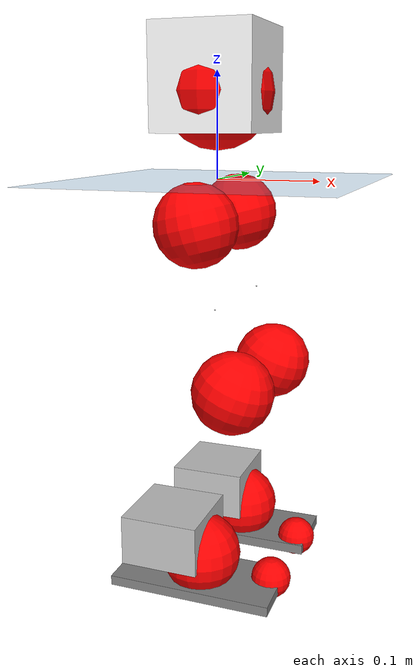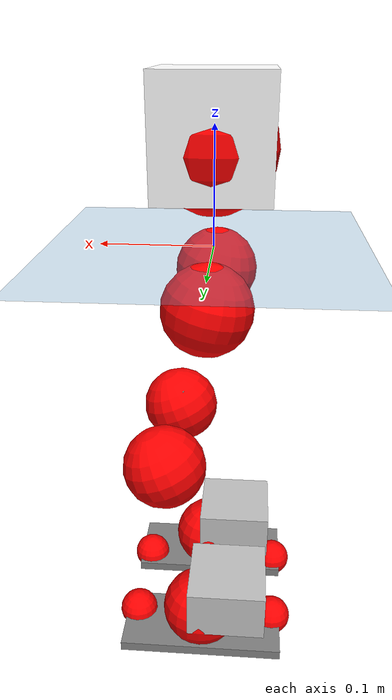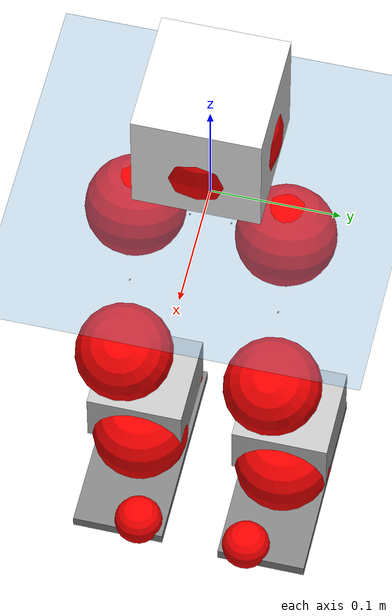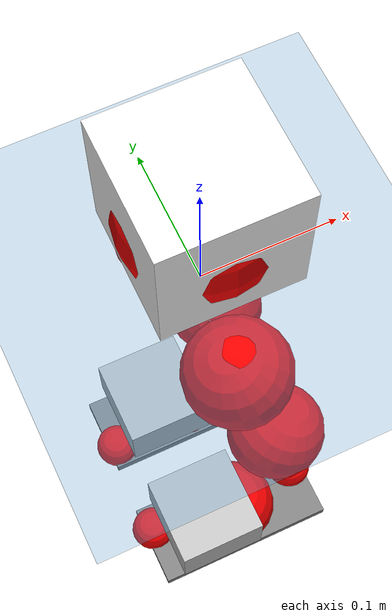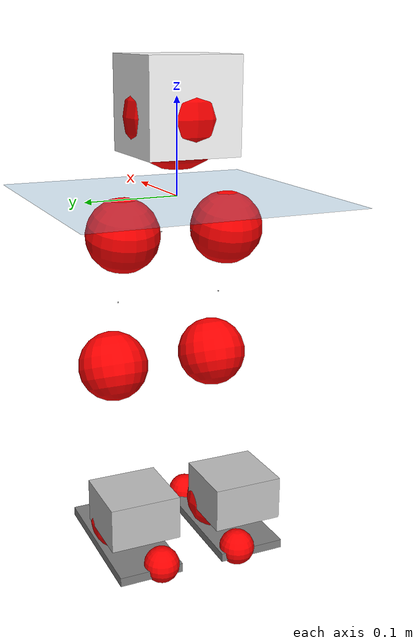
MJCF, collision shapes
<mujoco model="pi_12dof_release_v1">
  <compiler angle="radian" assetdir="assets" balanceinertia="true" inertiafromgeom="false"/>

  <option timestep="0.005" density="1.2" viscosity="2e-05"/>

  <size nkey="1"/>

  <visual>
    <quality shadowsize="8192"/>
    <map shadowclip="0.5"/>
  </visual>

  <default>
    <default class="/">
      <joint armature="0.01" damping="0.01" frictionloss="0.01"/>
      <geom contype="0" conaffinity="0" group="1" solref="-1000 -80"/>
      <site size="0.01 0.005 0.005" group="5"/>
      <general forcelimited="true" biastype="affine" gainprm="20" biasprm="0 -20 -0.5"/>
      <default class="foot">
        <geom size="0.0845 0.036 0.005" type="box" condim="6" group="4" priority="1" friction="0.9 0.2 0.2" solimp="0.015 1 0.005"/>
      </default>
      <default class="reward_collision_sphere">
        <geom group="5" rgba="1 0 0 1"/>
      </default>
    </default>
  </default>

  <asset>
    <texture type="skybox" colorspace="auto" name="//unnamed_texture_0" builtin="gradient" rgb1="0.95 0.95 0.95" rgb2="0.95 0.95 0.95" width="100" height="600"/>
    <texture type="2d" colorspace="auto" name="texplane" builtin="checker" rgb1="0.345 0.575 0.748" rgb2="0.345 0.575 0.748" markrgb="1 1 1" width="512" height="512"/>
    <material name="MatPlane" class="/" texture="texplane" texuniform="true" texrepeat="2 2" specular="0.9"/>
    <mesh name="baselink_1" class="/" file="baselink_1.STL"/>
    <mesh name="r_hip_pitch_link" class="/" file="r_hip_pitch_link.STL"/>
    <mesh name="r_hip_roll_link" class="/" file="r_hip_roll_link.STL"/>
    <mesh name="r_thigh_link" class="/" file="r_thigh_link.STL"/>
    <mesh name="r_calf_link" class="/" file="r_calf_link.STL"/>
    <mesh name="r_ankle_pitch_link" class="/" file="r_ankle_pitch_link.STL"/>
    <mesh name="r_ankle_roll_link" class="/" file="r_ankle_roll_link.STL"/>
    <mesh name="l_hip_pitch_link" class="/" file="l_hip_pitch_link.STL"/>
    <mesh name="l_hip_roll_link" class="/" file="l_hip_roll_link.STL"/>
    <mesh name="l_thigh_link" class="/" file="l_thigh_link.STL"/>
    <mesh name="l_calf_link" class="/" file="l_calf_link.STL"/>
    <mesh name="l_ankle_pitch_link" class="/" file="l_ankle_pitch_link.STL"/>
    <mesh name="l_ankle_roll_link" class="/" file="l_ankle_roll_link.STL"/>
  </asset>

  <worldbody>
    <geom name="floor" class="/" size="100 100 0.125" type="plane" group="0" material="MatPlane"/>
    <light name="toplight_shadow" class="/" pos="0 0 5" dir="0.0990148 0.0990148 -0.990148" type="directional" ambient="0.04 0.04 0.04" diffuse="0.55 0.55 0.55" specular="0.12 0.12 0.12"/>
    <light name="toplight_fill" class="/" pos="0 0 5" dir="0.0990148 0.0990148 -0.990148" type="directional" castshadow="false" ambient="0.04 0.04 0.04" diffuse="0.3 0.3 0.3" specular="0.08 0.08 0.08"/>
    <body name="trunk" pos="0.000111055 0.000513794 0.000454668" quat="1 -0.000106262 -3.03796e-05 -0.000219652">
      <inertial pos="0.00331662 -0.00215345 0.0459885" quat="0.696306 0.0118578 0.0057365 0.717624" mass="1.98061" diaginertia="0.012032 0.00195106 0.00802012"/>
      <joint name="//unnamed_joint_0" type="free"/>
      <geom name="//unnamed_geom_1" class="/" type="mesh" density="0" rgba="1 1 1 1" mesh="baselink_1"/>
      <geom name="//unnamed_geom_2" class="/" size="0.0488685 0.0488685 0.0488685" pos="0 0 0.0914724" type="box" rgba="1 1 1 1"/>
      <geom name="//unnamed_geom_3" class="reward_collision_sphere" size="0.0537553" pos="0 0 0.0800383"/>
      <site name="imu" class="/" pos="-0.00177809 -0.000594258 -0.000628314" size="0.00977369"/>
      <camera name="track" class="/" pos="0 -1.47743 0" quat="0.707107 0.707107 0 0" mode="trackcom"/>
      <camera name="ego_camera" class="/" pos="0.078749 0 0.205813" quat="-0.5 -0.5 0.5 0.5"/>
      <body name="r_hip_pitch_link" pos="-0.000452742 -0.0166463 -0.0376345" quat="0.992209 5.75005e-05 -0.124584 0.000169071">
        <inertial pos="0.000987493 -0.0422364 0.000300863" quat="-0.0175337 0.700635 -0.034139 0.712487" mass="0.345315" diaginertia="0.000139035 2.19073e-05 0.000163368"/>
        <joint name="r_hip_pitch_joint" class="/" pos="0 0 0" axis="0.00829028 -0.999965 -0.00112642" range="-1.76103 1.23223" armature="0.00976346" damping="0.0190115" frictionloss="0.0103565"/>
        <geom name="//unnamed_geom_4" class="/" type="mesh" density="0" rgba="0.75294 0.75294 0.75294 1" mesh="r_hip_pitch_link"/>
        <geom name="//unnamed_geom_5" class="/" size="0.000488685 0.000488685 0.000488685" type="box" rgba="0.75294 0.75294 0.75294 1"/>
        <body name="r_hip_roll_link" pos="0.000426497 -0.04184 -0.00066356" quat="1 -0.000667546 0.000290201 -0.000162523">
          <inertial pos="-0.000668548 0.00132254 -0.0695014" quat="0.706997 -0.0753705 -0.080711 0.698541" mass="0.359067" diaginertia="0.000422993 6.24149e-05 0.000251667"/>
          <joint name="r_hip_roll_joint" class="/" pos="0 0 0" axis="-0.999991 0.00330389 -0.0026915" range="-0.123574 0.500819" armature="0.00981849" damping="0.00984349" frictionloss="0.0096098"/>
          <geom name="//unnamed_geom_6" class="/" type="mesh" density="0" rgba="0.75294 0.75294 0.75294 1" mesh="r_hip_roll_link"/>
          <geom name="//unnamed_geom_7" class="/" size="0.000488685 0.000488685 0.000488685" type="box" rgba="0.75294 0.75294 0.75294 1"/>
          <geom name="//unnamed_geom_8" class="reward_collision_sphere" size="0.0390948"/>
          <body name="r_thigh_link" pos="-0.000349126 -0.00120678 -0.0785018" quat="1 -0.00025089 -0.000204262 -3.07231e-05">
            <inertial pos="-0.000317563 0.00103296 -0.0546533" quat="0.735644 0.677363 -0.00253609 -0.000763605" mass="0.105264" diaginertia="0.00016087 2.12948e-05 0.000113636"/>
            <joint name="r_thigh_joint" class="/" pos="0 0 0" axis="-0.000573782 0.000246488 -1" range="-0.330553 0.563636" armature="0.0099782" damping="0" frictionloss="0.0104438"/>
            <geom name="//unnamed_geom_9" class="/" type="mesh" density="0" rgba="0.75294 0.75294 0.75294 1" mesh="r_thigh_link"/>
            <geom name="//unnamed_geom_10" class="/" size="0.000488685 0.000488685 0.000488685" type="box" rgba="0.75294 0.75294 0.75294 1"/>
            <body name="r_calf_link" pos="-0.00201803 -0.00106446 -0.0793819" quat="0.947652 4.52033e-05 0.319305 -8.74219e-05">
              <inertial pos="-0.000730834 -0.0017483 -0.0790494" quat="0.99995 -0.00736678 -0.000518258 0.00680058" mass="0.765308" diaginertia="0.00449971 0.000770161 0.000337364"/>
              <joint name="r_calf_joint" class="/" pos="0 0 0" axis="-0.00964631 -0.999942 0.00481371" stiffness="0.000902112" range="-1.63124 0.638103" armature="0.00988593" damping="0.0140182" frictionloss="0.0102784"/>
              <geom name="//unnamed_geom_11" class="/" type="mesh" density="0" rgba="0.75294 0.75294 0.75294 1" mesh="r_calf_link"/>
              <geom name="//unnamed_geom_12" class="/" size="0.000488685 0.000488685 0.000488685" type="box" rgba="0.75294 0.75294 0.75294 1"/>
              <geom name="//unnamed_geom_13" class="reward_collision_sphere" size="0.0390948"/>
              <body name="r_ankle_pitch_link" pos="0.00135791 0.000388484 -0.161409" quat="0.980068 6.15323e-06 -0.198663 -4.71187e-05">
                <inertial pos="0.00414141 0.00338063 0.000962078" quat="0.004449 0.708425 -0.000243979 0.705772" mass="0.163898" diaginertia="0.000395924 4.88661e-05 0.000234483"/>
                <joint name="r_ankle_pitch_joint" class="/" pos="0 0 0" axis="-0.000445071 -1 -0.000471185" range="-1.28884 0.478266" armature="0.00999885" damping="0.0113065" frictionloss="0.0101851"/>
                <geom name="//unnamed_geom_14" class="/" type="mesh" density="0" rgba="0.75294 0.75294 0.75294 1" mesh="r_ankle_pitch_link"/>
                <geom name="//unnamed_geom_15" class="/" size="0.0381174 0.0390948 0.0244342" type="box" rgba="0.75294 0.75294 0.75294 1"/>
                <body name="r_ankle_roll_link" pos="0.0806945 0.00273371 0.00117219" quat="1 -5.82479e-05 1.01823e-05 3.12102e-05">
                  <inertial pos="-0.0243857 -0.000508116 -0.0164093" quat="0.558639 0.434324 0.435094 0.556758" mass="0.493836" diaginertia="0.00148902 0.000230545 0.00057028"/>
                  <joint name="r_ankle_roll_joint" class="/" pos="0 0 0" axis="-0.999963 -0.00821935 -0.0024894" range="-0.11708 0.15602" armature="0.00966434" damping="0.00430538" frictionloss="0.00953616"/>
                  <geom name="//unnamed_geom_16" class="/" type="mesh" density="0" rgba="0.75294 0.75294 0.75294 1" mesh="r_ankle_roll_link"/>
                  <geom name="//unnamed_geom_17" class="/" type="mesh" rgba="0.75294 0.75294 0.75294 1" mesh="r_ankle_roll_link"/>
                  <geom name="right_foot" class="foot" size="0.0805714 0.0369391 0.00478545" pos="-0.0535494 0 -0.0503098"/>
                  <geom name="//unnamed_geom_19" class="reward_collision_sphere" size="0.0390948" pos="-0.0524994 0 -0.0228681"/>
                  <geom name="//unnamed_geom_20" class="reward_collision_sphere" size="0.0195474" pos="0.0157498 0.0147743 -0.0457362"/>
                  <geom name="//unnamed_geom_21" class="reward_collision_sphere" size="0.0195474" pos="-0.125998 0.0147743 -0.0457362"/>
                  <site name="right_foot" class="foot" pos="-0.0535494 0 -0.0503098" size="0.00977369"/>
                </body>
              </body>
            </body>
          </body>
        </body>
      </body>
      <body name="l_hip_pitch_link" pos="0.00094382 0.0161689 -0.0367069" quat="0.99219 -2.93366e-05 -0.124739 -0.000104721">
        <inertial pos="0.00128717 0.0397832 -0.000946795" quat="-0.0386771 0.705327 0.0298615 0.707196" mass="0.359673" diaginertia="0.00016478 2.36474e-05 0.000196743"/>
        <joint name="l_hip_pitch_joint" class="/" pos="0 0 0" axis="0.00166614 0.999998 -0.00128328" range="-1.23533 1.76624" armature="0.00980213" damping="0.0131943" frictionloss="0.00970425"/>
        <geom name="//unnamed_geom_22" class="/" type="mesh" density="0" rgba="0.75294 0.75294 0.75294 1" mesh="l_hip_pitch_link"/>
        <geom name="//unnamed_geom_23" class="/" size="0.000488685 0.000488685 0.000488685" type="box" rgba="0.75294 0.75294 0.75294 1"/>
        <body name="l_hip_roll_link" pos="0.000404761 0.0426054 -0.000964431" quat="1 0.000111506 0.000576632 0.000237408">
          <inertial pos="-0.00112581 0.00175002 -0.0702085" quat="0.699237 -0.0752937 -0.0779985 0.706622" mass="0.355572" diaginertia="0.000429577 6.03338e-05 0.000253405"/>
          <joint name="l_hip_roll_joint" class="/" pos="0 0 0" axis="-0.999993 -0.00327828 -0.00151027" range="-0.495528 0.107848" armature="0.010545" damping="0.00431888" frictionloss="0.0102083"/>
          <geom name="//unnamed_geom_24" class="/" type="mesh" density="0" rgba="0.75294 0.75294 0.75294 1" mesh="l_hip_roll_link"/>
          <geom name="//unnamed_geom_25" class="/" size="0.000488685 0.000488685 0.000488685" type="box" rgba="0.75294 0.75294 0.75294 1"/>
          <geom name="//unnamed_geom_26" class="reward_collision_sphere" size="0.0390948"/>
          <body name="l_thigh_link" pos="0.000948049 -0.000735735 -0.0794657" quat="1 0.000185752 0.00035793 0.000181271">
            <inertial pos="9.45559e-05 -0.00116975 -0.05517" quat="0.675399 0.737452 -3.60252e-05 -4.91779e-05" mass="0.106443" diaginertia="0.000161034 2.10001e-05 0.000113777"/>
            <joint name="l_thigh_joint" class="/" pos="0 0 0" axis="-0.000375644 5.94428e-05 -1" range="-0.610148 0.297914" armature="0.0102363" damping="0" frictionloss="0.00949874"/>
            <geom name="//unnamed_geom_27" class="/" type="mesh" density="0" rgba="0.75294 0.75294 0.75294 1" mesh="l_thigh_link"/>
            <geom name="//unnamed_geom_28" class="/" size="0.000488685 0.000488685 0.000488685" type="box" rgba="0.75294 0.75294 0.75294 1"/>
            <body name="l_calf_link" pos="-0.00163631 0.00062696 -0.0809639" quat="0.947903 0.000315671 0.318559 -0.00040344">
              <inertial pos="0.000725692 0.00306981 -0.0796348" quat="0.999985 0.00276838 -0.000292992 0.00466281" mass="0.768814" diaginertia="0.00454346 0.000774836 0.000353308"/>
              <joint name="l_calf_joint" class="/" pos="0 0 0" axis="0.000956761 0.999996 -0.00283058" range="-0.638565 1.66355" armature="0.0103102" damping="0.00761015" frictionloss="0.00963978"/>
              <geom name="//unnamed_geom_29" class="/" type="mesh" density="0" rgba="0.75294 0.75294 0.75294 1" mesh="l_calf_link"/>
              <geom name="//unnamed_geom_30" class="/" size="0.000488685 0.000488685 0.000488685" type="box" rgba="0.75294 0.75294 0.75294 1"/>
              <geom name="//unnamed_geom_31" class="reward_collision_sphere" size="0.0390948"/>
              <body name="l_ankle_pitch_link" pos="0.000854782 0.0012307 -0.159052" quat="0.980007 -0.000282872 -0.198965 -8.41612e-05">
                <inertial pos="0.00530031 -0.000655728 -0.000660757" quat="-0.000752855 0.707926 0.00403831 0.706275" mass="0.163689" diaginertia="0.000391147 4.90681e-05 0.000236169"/>
                <joint name="l_ankle_pitch_joint" class="/" pos="0 0 0" axis="7.01197e-05 0.999999 0.00130636" stiffness="0.00387545" range="-0.517959 1.30737" armature="0.00936871" damping="0.00982216" frictionloss="0.0101204"/>
                <geom name="//unnamed_geom_32" class="/" type="mesh" density="0" rgba="0.75294 0.75294 0.75294 1" mesh="l_ankle_pitch_link"/>
                <geom name="//unnamed_geom_33" class="/" size="0.0381174 0.0390948 0.0244342" type="box" rgba="0.75294 0.75294 0.75294 1"/>
                <body name="l_ankle_roll_link" pos="0.0789544 0.00101344 -0.0007344" quat="1 -1.80532e-05 -8.20786e-05 5.11491e-05">
                  <inertial pos="-0.0247127 -0.000132697 -0.0160113" quat="0.559719 0.430898 0.434397 0.558875" mass="0.480309" diaginertia="0.00143645 0.000223732 0.000550448"/>
                  <joint name="l_ankle_roll_joint" class="/" pos="0 0 0" axis="-1 -0.000397705 0.000801052" range="-0.123792 0.155572" armature="0.00951388" damping="0" frictionloss="0.0101414"/>
                  <geom name="//unnamed_geom_34" class="/" type="mesh" density="0" rgba="0.75294 0.75294 0.75294 1" mesh="l_ankle_roll_link"/>
                  <geom name="//unnamed_geom_35" class="/" type="mesh" rgba="0.75294 0.75294 0.75294 1" mesh="l_ankle_roll_link"/>
                  <geom name="left_foot" class="foot" size="0.0809036 0.0356046 0.00500936" pos="-0.0535494 0 -0.0503098"/>
                  <geom name="//unnamed_geom_37" class="reward_collision_sphere" size="0.0390948" pos="-0.0524994 0 -0.0228681"/>
                  <geom name="//unnamed_geom_38" class="reward_collision_sphere" size="0.0195474" pos="0.0157498 -0.0147743 -0.0457362"/>
                  <geom name="//unnamed_geom_39" class="reward_collision_sphere" size="0.0195474" pos="-0.125998 -0.0147743 -0.0457362"/>
                  <site name="left_foot" class="foot" pos="-0.0535494 0 -0.0503098" size="0.00977369"/>
                </body>
              </body>
            </body>
          </body>
        </body>
      </body>
    </body>
  </worldbody>

  <contact>
    <pair class="/" geom1="floor" geom2="right_foot" name="//unnamed_contact_1"/>
    <pair class="/" geom1="floor" geom2="left_foot" name="//unnamed_contact_0"/>
  </contact>

  <actuator>
    <general name="r_hip_pitch_joint" class="/" joint="r_hip_pitch_joint" forcerange="-21.2306 21.2306" gainprm="20.0724" biasprm="0 -20.0724 -0.469838"/>
    <general name="r_hip_roll_joint" class="/" joint="r_hip_roll_joint" forcerange="-21.817 21.817" gainprm="20.0724" biasprm="0 -20.0724 -0.469838"/>
    <general name="r_thigh_joint" class="/" joint="r_thigh_joint" forcerange="-20.464 20.464" gainprm="20.0724" biasprm="0 -20.0724 -0.469838"/>
    <general name="r_calf_joint" class="/" joint="r_calf_joint" forcerange="-20.505 20.505" gainprm="20.0724" biasprm="0 -20.0724 -0.469838"/>
    <general name="r_ankle_pitch_joint" class="/" joint="r_ankle_pitch_joint" forcerange="-20.46 20.46" gainprm="20.0724" biasprm="0 -20.0724 -0.469838"/>
    <general name="r_ankle_roll_joint" class="/" joint="r_ankle_roll_joint" forcerange="-20.4829 20.4829" gainprm="20.0724" biasprm="0 -20.0724 -0.469838"/>
    <general name="l_hip_pitch_joint" class="/" joint="l_hip_pitch_joint" forcerange="-19.7676 19.7676" gainprm="20.0724" biasprm="0 -20.0724 -0.469838"/>
    <general name="l_hip_roll_joint" class="/" joint="l_hip_roll_joint" forcerange="-20.4132 20.4132" gainprm="20.0724" biasprm="0 -20.0724 -0.469838"/>
    <general name="l_thigh_joint" class="/" joint="l_thigh_joint" forcerange="-20.3238 20.3238" gainprm="20.0724" biasprm="0 -20.0724 -0.469838"/>
    <general name="l_calf_joint" class="/" joint="l_calf_joint" forcerange="-21.2606 21.2606" gainprm="20.0724" biasprm="0 -20.0724 -0.469838"/>
    <general name="l_ankle_pitch_joint" class="/" joint="l_ankle_pitch_joint" forcerange="-20.7605 20.7605" gainprm="20.0724" biasprm="0 -20.0724 -0.469838"/>
    <general name="l_ankle_roll_joint" class="/" joint="l_ankle_roll_joint" forcerange="-20.6375 20.6375" gainprm="20.0724" biasprm="0 -20.0724 -0.469838"/>
  </actuator>

  <sensor>
    <gyro site="imu" name="imu_angular_velocity"/>
    <velocimeter site="imu" name="imu_linear_velocity"/>
    <framelinvel objtype="site" objname="left_foot" name="left_foot_global_linear_velocity"/>
    <framelinvel objtype="site" objname="right_foot" name="right_foot_global_linear_velocity"/>
  </sensor>

  <keyframe>
    <key name="home" qpos="0 0 0.291 1 0 0 0 0.4 0 0 -0.8 0.4 0 -0.4 0 0 0.8 -0.4 0"/>
  </keyframe>
</mujoco>
